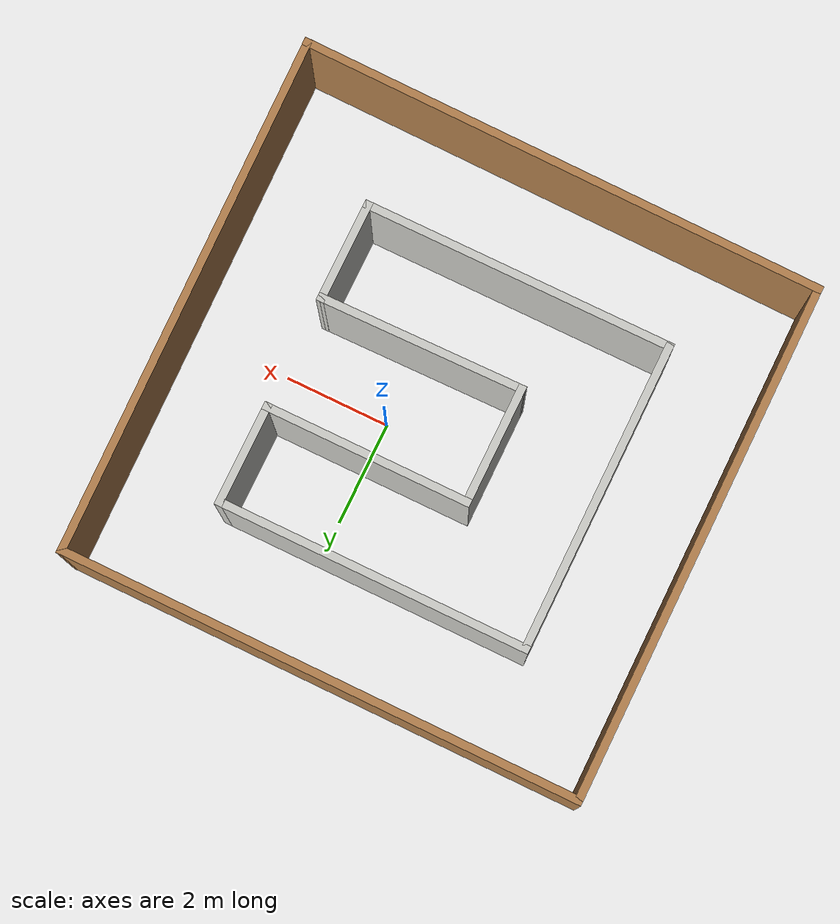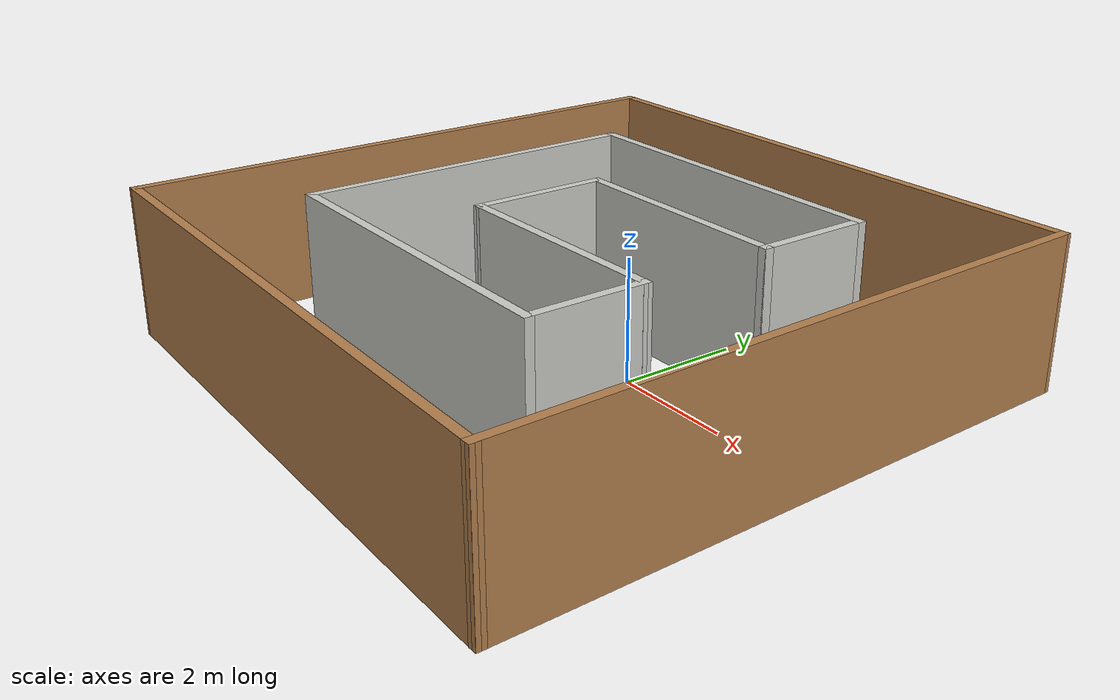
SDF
<?xml version='1.0'?>
<sdf version='1.7'>
  <model name='yarab_yarab'>
    <pose>-0.955894 -0.25236 0 0 -0 0</pose>
    <link name='Wall_10'>
      <collision name='Wall_10_Collision'>
        <geometry>
          <box>
            <size>6 0.15 2.5</size>
          </box>
        </geometry>
        <pose>0 0 1.25 0 -0 0</pose>
      </collision>
      <visual name='Wall_10_Visual'>
        <pose>0 0 1.25 0 -0 0</pose>
        <geometry>
          <box>
            <size>6 0.15 2.5</size>
          </box>
        </geometry>
        <material>
          <script>
            <uri>file://media/materials/scripts/gazebo.material</uri>
            <name>Gazebo/CeilingTiled</name>
          </script>
          <ambient>1 1 1 1</ambient>
        </material>
        <meta>
          <layer>0</layer>
        </meta>
      </visual>
      <pose>-0.172106 3.05936 0 0 -0 3.14159</pose>
    </link>
    <link name='Wall_11'>
      <collision name='Wall_11_Collision'>
        <geometry>
          <box>
            <size>6 0.15 2.5</size>
          </box>
        </geometry>
        <pose>0 0 1.25 0 -0 0</pose>
      </collision>
      <visual name='Wall_11_Visual'>
        <pose>0 0 1.25 0 -0 0</pose>
        <geometry>
          <box>
            <size>6 0.15 2.5</size>
          </box>
        </geometry>
        <material>
          <script>
            <uri>file://media/materials/scripts/gazebo.material</uri>
            <name>Gazebo/CeilingTiled</name>
          </script>
          <ambient>1 1 1 1</ambient>
        </material>
        <meta>
          <layer>0</layer>
        </meta>
      </visual>
      <pose>-3.09711 0.13436 0 0 -0 -1.5708</pose>
    </link>
    <link name='Wall_13'>
      <collision name='Wall_13_Collision'>
        <geometry>
          <box>
            <size>6 0.15 2.5</size>
          </box>
        </geometry>
        <pose>0 0 1.25 0 -0 0</pose>
      </collision>
      <visual name='Wall_13_Visual'>
        <pose>0 0 1.25 0 -0 0</pose>
        <geometry>
          <box>
            <size>6 0.15 2.5</size>
          </box>
        </geometry>
        <material>
          <script>
            <uri>file://media/materials/scripts/gazebo.material</uri>
            <name>Gazebo/CeilingTiled</name>
          </script>
          <ambient>1 1 1 1</ambient>
        </material>
        <meta>
          <layer>0</layer>
        </meta>
      </visual>
      <pose>-0.172106 -2.79064 0 0 -0 0</pose>
    </link>
    <link name='Wall_14'>
      <collision name='Wall_14_Collision'>
        <geometry>
          <box>
            <size>2 0.15 2.5</size>
          </box>
        </geometry>
        <pose>0 0 1.25 0 -0 0</pose>
      </collision>
      <visual name='Wall_14_Visual'>
        <pose>0 0 1.25 0 -0 0</pose>
        <geometry>
          <box>
            <size>2 0.15 2.5</size>
          </box>
        </geometry>
        <material>
          <script>
            <uri>file://media/materials/scripts/gazebo.material</uri>
            <name>Gazebo/CeilingTiled</name>
          </script>
          <ambient>1 1 1 1</ambient>
        </material>
        <meta>
          <layer>0</layer>
        </meta>
      </visual>
      <pose>2.75289 -1.86564 0 0 -0 1.5708</pose>
    </link>
    <link name='Wall_16'>
      <collision name='Wall_16_Collision'>
        <geometry>
          <box>
            <size>4.00033 0.15 2.5</size>
          </box>
        </geometry>
        <pose>0 0 1.25 0 -0 0</pose>
      </collision>
      <visual name='Wall_16_Visual'>
        <pose>0 0 1.25 0 -0 0</pose>
        <geometry>
          <box>
            <size>4.00033 0.15 2.5</size>
          </box>
        </geometry>
        <material>
          <script>
            <uri>file://media/materials/scripts/gazebo.material</uri>
            <name>Gazebo/CeilingTiled</name>
          </script>
          <ambient>1 1 1 1</ambient>
        </material>
        <meta>
          <layer>0</layer>
        </meta>
      </visual>
      <pose>0.827894 -0.96564 0 0 -0 0.012986</pose>
    </link>
    <link name='Wall_26'>
      <collision name='Wall_26_Collision'>
        <geometry>
          <box>
            <size>10.1405 0.15 2.5</size>
          </box>
        </geometry>
        <pose>0 0 1.25 0 -0 0</pose>
      </collision>
      <visual name='Wall_26_Visual'>
        <pose>0 0 1.25 0 -0 0</pose>
        <geometry>
          <box>
            <size>10.1405 0.15 2.5</size>
          </box>
        </geometry>
        <material>
          <script>
            <uri>file://media/materials/scripts/gazebo.material</uri>
            <name>Gazebo/Wood</name>
          </script>
          <ambient>1 1 1 1</ambient>
        </material>
        <meta>
          <layer>0</layer>
        </meta>
      </visual>
      <pose>4.92483 -0 0 0 -0 1.58932</pose>
    </link>
    <link name='Wall_27'>
      <collision name='Wall_27_Collision'>
        <geometry>
          <box>
            <size>10 0.15 2.5</size>
          </box>
        </geometry>
        <pose>0 0 1.25 0 -0 0</pose>
      </collision>
      <visual name='Wall_27_Visual'>
        <pose>0 0 1.25 0 -0 0</pose>
        <geometry>
          <box>
            <size>10 0.15 2.5</size>
          </box>
        </geometry>
        <material>
          <script>
            <uri>file://media/materials/scripts/gazebo.material</uri>
            <name>Gazebo/Wood</name>
          </script>
          <ambient>1 1 1 1</ambient>
        </material>
        <meta>
          <layer>0</layer>
        </meta>
      </visual>
      <pose>-0.092696 4.99439 0 0 -0 3.14159</pose>
    </link>
    <link name='Wall_28'>
      <collision name='Wall_28_Collision'>
        <geometry>
          <box>
            <size>10 0.15 2.5</size>
          </box>
        </geometry>
        <pose>0 0 1.25 0 -0 0</pose>
      </collision>
      <visual name='Wall_28_Visual'>
        <pose>0 0 1.25 0 -0 0</pose>
        <geometry>
          <box>
            <size>10 0.15 2.5</size>
          </box>
        </geometry>
        <material>
          <script>
            <uri>file://media/materials/scripts/gazebo.material</uri>
            <name>Gazebo/Wood</name>
          </script>
          <ambient>1 1 1 1</ambient>
        </material>
        <meta>
          <layer>0</layer>
        </meta>
      </visual>
      <pose>-5.01769 0.069392 0 0 -0 -1.5708</pose>
    </link>
    <link name='Wall_31'>
      <collision name='Wall_31_Collision'>
        <geometry>
          <box>
            <size>10.186 0.15 2.5</size>
          </box>
        </geometry>
        <pose>0 0 1.25 0 -0 0</pose>
      </collision>
      <visual name='Wall_31_Visual'>
        <pose>0 0 1.25 0 -0 0</pose>
        <geometry>
          <box>
            <size>10.186 0.15 2.5</size>
          </box>
        </geometry>
        <material>
          <script>
            <uri>file://media/materials/scripts/gazebo.material</uri>
            <name>Gazebo/Wood</name>
          </script>
          <ambient>1 1 1 1</ambient>
        </material>
        <meta>
          <layer>0</layer>
        </meta>
      </visual>
      <pose>-0.000173 -4.925 0 0 -0 -0.013829</pose>
    </link>
    <link name='Wall_4'>
      <collision name='Wall_4_Collision'>
        <geometry>
          <box>
            <size>2.35 0.15 2.5</size>
          </box>
        </geometry>
        <pose>0 0 1.25 0 -0 0</pose>
      </collision>
      <visual name='Wall_4_Visual'>
        <pose>0 0 1.25 0 -0 0</pose>
        <geometry>
          <box>
            <size>2.35 0.15 2.5</size>
          </box>
        </geometry>
        <material>
          <script>
            <uri>file://media/materials/scripts/gazebo.material</uri>
            <name>Gazebo/CeilingTiled</name>
          </script>
          <ambient>1 1 1 1</ambient>
        </material>
        <meta>
          <layer>0</layer>
        </meta>
      </visual>
      <pose>-1.09711 0.10936 0 0 -0 1.5708</pose>
    </link>
    <link name='Wall_6'>
      <collision name='Wall_6_Collision'>
        <geometry>
          <box>
            <size>4 0.15 2.5</size>
          </box>
        </geometry>
        <pose>0 0 1.25 0 -0 0</pose>
      </collision>
      <visual name='Wall_6_Visual'>
        <pose>0 0 1.25 0 -0 0</pose>
        <geometry>
          <box>
            <size>4 0.15 2.5</size>
          </box>
        </geometry>
        <material>
          <script>
            <uri>file://media/materials/scripts/gazebo.material</uri>
            <name>Gazebo/CeilingTiled</name>
          </script>
          <ambient>1 1 1 1</ambient>
        </material>
        <meta>
          <layer>0</layer>
        </meta>
      </visual>
      <pose>0.827894 1.20936 0 0 -0 0</pose>
    </link>
    <link name='Wall_9'>
      <collision name='Wall_9_Collision'>
        <geometry>
          <box>
            <size>2 0.15 2.5</size>
          </box>
        </geometry>
        <pose>0 0 1.25 0 -0 0</pose>
      </collision>
      <visual name='Wall_9_Visual'>
        <pose>0 0 1.25 0 -0 0</pose>
        <geometry>
          <box>
            <size>2 0.15 2.5</size>
          </box>
        </geometry>
        <material>
          <script>
            <uri>file://media/materials/scripts/gazebo.material</uri>
            <name>Gazebo/CeilingTiled</name>
          </script>
          <ambient>1 1 1 1</ambient>
        </material>
        <meta>
          <layer>0</layer>
        </meta>
      </visual>
      <pose>2.75289 2.13436 0 0 -0 1.5708</pose>
    </link>
    <static>1</static>
  </model>
</sdf>
